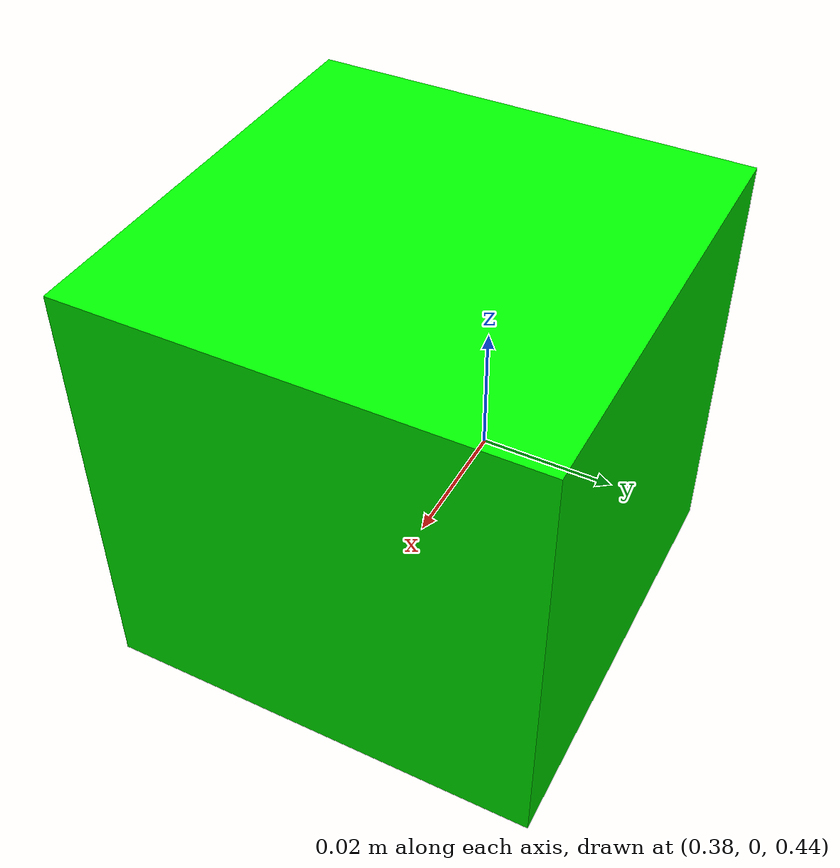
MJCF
<mujoco>
    <worldbody>
        <body name="green_block" pos="0.4 0.0 0.46">
            <joint name="green_block:joint" type="free" damping="0.1" frictionloss="0"/>
            <geom name="green_block" size="0.03 0.03 0.03" rgba="0 1 0 1" type="box" conaffinity="0" contype="0" group="1"/>
            <geom size="0.03 0.03 0.03" type="box" conaffinity="1" contype="1" condim="4" group="4" mass="0.01" friction="1 1 1" solimp="1 1 1" solref="0.00001 1"/>
            <site name="green_block" pos="0 0 0" size="0.02 0.02 0.02" rgba="0 1 0 0.5" type="sphere" />
        </body>
    </worldbody>
</mujoco>
